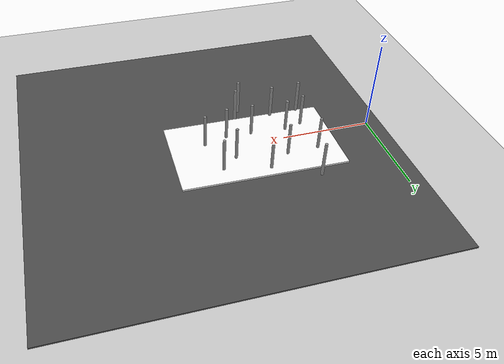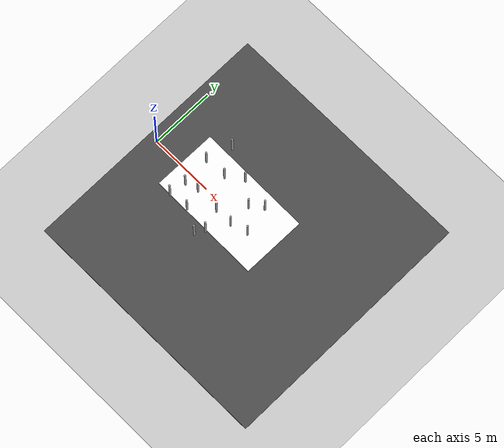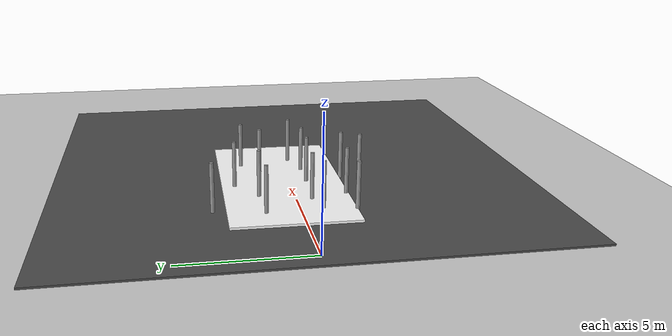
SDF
<sdf version="1.6">
 <world name="default">
  <model name="ground_plane">
   <static>1</static>
   <link name="link">
    <collision name="collision">
     <geometry><plane><normal>0 0 1</normal><size>100 100</size></plane></geometry>
     <surface><friction><ode><mu>100</mu><mu2>50</mu2></ode></friction></surface>
    </collision>
    <visual name="visual">
     <cast_shadows>0</cast_shadows>
     <geometry><plane><normal>0 0 1</normal><size>100 100</size></plane></geometry>
     <material>
      <script><uri>file://media/materials/scripts/gazebo.material</uri><name>Gazebo/Grey</name></script>
     </material>
    </visual>
   </link>
  </model>
  <model name="poste_16x200_clone_6_clone_9">
   <link name="link_1">
    <inertial>
     <mass>1</mass>
     <inertia><ixx>0.145833</ixx><ixy>0</ixy><ixz>0</ixz><iyy>0.145833</iyy><iyz>0</iyz><izz>0.125</izz></inertia>
    </inertial>
    <pose>5e-06 3e-06 0 0 -0 0</pose>
    <visual name="visual">
     <geometry><cylinder><radius>0.08</radius><length>2</length></cylinder></geometry>
     <material>
      <lighting>1</lighting>
      <script><uri>file://media/materials/scripts/gazebo.material</uri><name>Gazebo/Grey</name></script>
      <shader type="vertex"><normal_map>__default__</normal_map></shader>
      <ambient>0.3 0.3 0.3 1</ambient>
      <diffuse>0.7 0.7 0.7 1</diffuse>
      <specular>0.01 0.01 0.01 1</specular>
      <emissive>0 0 0 1</emissive>
     </material>
    </visual>
    <collision name="collision">
     <geometry><cylinder><radius>0.08</radius><length>2</length></cylinder></geometry>
     <surface>
      <friction>
       <ode><mu>1</mu><mu2>1</mu2><fdir1>0 0 0</fdir1><slip1>0</slip1><slip2>0</slip2></ode>
       <torsional>
        <coefficient>1</coefficient>
        <patch_radius>0</patch_radius>
        <surface_radius>0</surface_radius>
        <use_patch_radius>1</use_patch_radius>
        <ode><slip>0</slip></ode>
       </torsional>
      </friction>
      <bounce><restitution_coefficient>0</restitution_coefficient><threshold>1e+06</threshold></bounce>
      <contact>
       <collide_without_contact>0</collide_without_contact>
       <collide_without_contact_bitmask>1</collide_without_contact_bitmask>
       <collide_bitmask>1</collide_bitmask>
       <ode>
        <soft_cfm>0</soft_cfm>
        <soft_erp>0.2</soft_erp>
        <kp>1e+13</kp>
        <kd>1</kd>
        <max_vel>0.01</max_vel>
        <min_depth>0</min_depth>
       </ode>
       <bullet>
        <split_impulse>1</split_impulse>
        <split_impulse_penetration_threshold>-0.01</split_impulse_penetration_threshold>
        <soft_cfm>0</soft_cfm>
        <soft_erp>0.2</soft_erp>
        <kp>1e+13</kp>
        <kd>1</kd>
       </bullet>
      </contact>
     </surface>
    </collision>
   </link>
   <static>0</static>
   <pose>6.79569 -2.95608 1.05 -7e-05 3e-05 -0.033717</pose>
  </model>
  <model name="poste_16x200_clone_6_clone_14">
   <link name="link_1">
    <inertial>
     <mass>1</mass>
     <inertia><ixx>0.145833</ixx><ixy>0</ixy><ixz>0</ixz><iyy>0.145833</iyy><iyz>0</iyz><izz>0.125</izz></inertia>
    </inertial>
    <pose>5e-06 3e-06 0 0 -0 0</pose>
    <visual name="visual">
     <geometry><cylinder><radius>0.08</radius><length>2</length></cylinder></geometry>
     <material>
      <lighting>1</lighting>
      <script><uri>file://media/materials/scripts/gazebo.material</uri><name>Gazebo/Grey</name></script>
      <shader type="vertex"><normal_map>__default__</normal_map></shader>
      <ambient>0.3 0.3 0.3 1</ambient>
      <diffuse>0.7 0.7 0.7 1</diffuse>
      <specular>0.01 0.01 0.01 1</specular>
      <emissive>0 0 0 1</emissive>
     </material>
    </visual>
    <collision name="collision">
     <geometry><cylinder><radius>0.08</radius><length>2</length></cylinder></geometry>
     <surface>
      <friction>
       <ode><mu>1</mu><mu2>1</mu2><fdir1>0 0 0</fdir1><slip1>0</slip1><slip2>0</slip2></ode>
       <torsional>
        <coefficient>1</coefficient>
        <patch_radius>0</patch_radius>
        <surface_radius>0</surface_radius>
        <use_patch_radius>1</use_patch_radius>
        <ode><slip>0</slip></ode>
       </torsional>
      </friction>
      <bounce><restitution_coefficient>0</restitution_coefficient><threshold>1e+06</threshold></bounce>
      <contact>
       <collide_without_contact>0</collide_without_contact>
       <collide_without_contact_bitmask>1</collide_without_contact_bitmask>
       <collide_bitmask>1</collide_bitmask>
       <ode>
        <soft_cfm>0</soft_cfm>
        <soft_erp>0.2</soft_erp>
        <kp>1e+13</kp>
        <kd>1</kd>
        <max_vel>0.01</max_vel>
        <min_depth>0</min_depth>
       </ode>
       <bullet>
        <split_impulse>1</split_impulse>
        <split_impulse_penetration_threshold>-0.01</split_impulse_penetration_threshold>
        <soft_cfm>0</soft_cfm>
        <soft_erp>0.2</soft_erp>
        <kp>1e+13</kp>
        <kd>1</kd>
       </bullet>
      </contact>
     </surface>
    </collision>
   </link>
   <static>0</static>
   <pose>4.1574 3.37992 1.05001 -7.1e-05 3.2e-05 -0.012588</pose>
  </model>
  <model name="asphalt_plane">
   <static>1</static>
   <link name="link">
    <collision name="collision"><geometry><box><size>20 20 0.1</size></box></geometry></collision>
    <visual name="visual">
     <cast_shadows>0</cast_shadows>
     <geometry><box><size>20 20 0.1</size></box></geometry>
     <material>
      <script>
       <uri>model://asphalt_plane/materials/scripts</uri>
       <uri>model://asphalt_plane/materials/textures</uri>
       <name>vrc/asphalt</name>
      </script>
     </material>
    </visual>
   </link>
   <pose>9.20899 -0.21691 0 0 -0 0</pose>
  </model>
  <model name="poste_16x200_clone_6_clone_9_clone">
   <link name="link_1">
    <inertial>
     <mass>1</mass>
     <inertia><ixx>0.145833</ixx><ixy>0</ixy><ixz>0</ixz><iyy>0.145833</iyy><iyz>0</iyz><izz>0.125</izz></inertia>
    </inertial>
    <pose>5e-06 3e-06 0 0 -0 0</pose>
    <visual name="visual">
     <geometry><cylinder><radius>0.08</radius><length>2</length></cylinder></geometry>
     <material>
      <lighting>1</lighting>
      <script><uri>file://media/materials/scripts/gazebo.material</uri><name>Gazebo/Grey</name></script>
      <shader type="vertex"><normal_map>__default__</normal_map></shader>
      <ambient>0.3 0.3 0.3 1</ambient>
      <diffuse>0.7 0.7 0.7 1</diffuse>
      <specular>0.01 0.01 0.01 1</specular>
      <emissive>0 0 0 1</emissive>
     </material>
    </visual>
    <collision name="collision">
     <geometry><cylinder><radius>0.08</radius><length>2</length></cylinder></geometry>
     <surface>
      <friction>
       <ode><mu>1</mu><mu2>1</mu2><fdir1>0 0 0</fdir1><slip1>0</slip1><slip2>0</slip2></ode>
       <torsional>
        <coefficient>1</coefficient>
        <patch_radius>0</patch_radius>
        <surface_radius>0</surface_radius>
        <use_patch_radius>1</use_patch_radius>
        <ode><slip>0</slip></ode>
       </torsional>
      </friction>
      <bounce><restitution_coefficient>0</restitution_coefficient><threshold>1e+06</threshold></bounce>
      <contact>
       <collide_without_contact>0</collide_without_contact>
       <collide_without_contact_bitmask>1</collide_without_contact_bitmask>
       <collide_bitmask>1</collide_bitmask>
       <ode>
        <soft_cfm>0</soft_cfm>
        <soft_erp>0.2</soft_erp>
        <kp>1e+13</kp>
        <kd>1</kd>
        <max_vel>0.01</max_vel>
        <min_depth>0</min_depth>
       </ode>
       <bullet>
        <split_impulse>1</split_impulse>
        <split_impulse_penetration_threshold>-0.01</split_impulse_penetration_threshold>
        <soft_cfm>0</soft_cfm>
        <soft_erp>0.2</soft_erp>
        <kp>1e+13</kp>
        <kd>1</kd>
       </bullet>
      </contact>
     </surface>
    </collision>
   </link>
   <static>0</static>
   <pose>5.3148 1.45939 1.05 -7.4e-05 3e-05 -0.073887</pose>
  </model>
  <model name="poste_16x200_clone_6_clone_9_clone_0">
   <link name="link_1">
    <inertial>
     <mass>1</mass>
     <inertia><ixx>0.145833</ixx><ixy>0</ixy><ixz>0</ixz><iyy>0.145833</iyy><iyz>0</iyz><izz>0.125</izz></inertia>
    </inertial>
    <pose>5e-06 3e-06 0 0 -0 0</pose>
    <visual name="visual">
     <geometry><cylinder><radius>0.08</radius><length>2</length></cylinder></geometry>
     <material>
      <lighting>1</lighting>
      <script><uri>file://media/materials/scripts/gazebo.material</uri><name>Gazebo/Grey</name></script>
      <shader type="vertex"><normal_map>__default__</normal_map></shader>
      <ambient>0.3 0.3 0.3 1</ambient>
      <diffuse>0.7 0.7 0.7 1</diffuse>
      <specular>0.01 0.01 0.01 1</specular>
      <emissive>0 0 0 1</emissive>
     </material>
    </visual>
    <collision name="collision">
     <geometry><cylinder><radius>0.08</radius><length>2</length></cylinder></geometry>
     <surface>
      <friction>
       <ode><mu>1</mu><mu2>1</mu2><fdir1>0 0 0</fdir1><slip1>0</slip1><slip2>0</slip2></ode>
       <torsional>
        <coefficient>1</coefficient>
        <patch_radius>0</patch_radius>
        <surface_radius>0</surface_radius>
        <use_patch_radius>1</use_patch_radius>
        <ode><slip>0</slip></ode>
       </torsional>
      </friction>
      <bounce><restitution_coefficient>0</restitution_coefficient><threshold>1e+06</threshold></bounce>
      <contact>
       <collide_without_contact>0</collide_without_contact>
       <collide_without_contact_bitmask>1</collide_without_contact_bitmask>
       <collide_bitmask>1</collide_bitmask>
       <ode>
        <soft_cfm>0</soft_cfm>
        <soft_erp>0.2</soft_erp>
        <kp>1e+13</kp>
        <kd>1</kd>
        <max_vel>0.01</max_vel>
        <min_depth>0</min_depth>
       </ode>
       <bullet>
        <split_impulse>1</split_impulse>
        <split_impulse_penetration_threshold>-0.01</split_impulse_penetration_threshold>
        <soft_cfm>0</soft_cfm>
        <soft_erp>0.2</soft_erp>
        <kp>1e+13</kp>
        <kd>1</kd>
       </bullet>
      </contact>
     </surface>
    </collision>
   </link>
   <static>0</static>
   <pose>8.08824 1.09921 1.05001 -7.2e-05 3.2e-05 -0.055579</pose>
  </model>
  <model name="poste_16x200_clone_6_clone_9_clone_1">
   <link name="link_1">
    <inertial>
     <mass>1</mass>
     <inertia><ixx>0.145833</ixx><ixy>0</ixy><ixz>0</ixz><iyy>0.145833</iyy><iyz>0</iyz><izz>0.125</izz></inertia>
    </inertial>
    <pose>5e-06 3e-06 0 0 -0 0</pose>
    <visual name="visual">
     <geometry><cylinder><radius>0.08</radius><length>2</length></cylinder></geometry>
     <material>
      <lighting>1</lighting>
      <script><uri>file://media/materials/scripts/gazebo.material</uri><name>Gazebo/Grey</name></script>
      <shader type="vertex"><normal_map>__default__</normal_map></shader>
      <ambient>0.3 0.3 0.3 1</ambient>
      <diffuse>0.7 0.7 0.7 1</diffuse>
      <specular>0.01 0.01 0.01 1</specular>
      <emissive>0 0 0 1</emissive>
     </material>
    </visual>
    <collision name="collision">
     <geometry><cylinder><radius>0.08</radius><length>2</length></cylinder></geometry>
     <surface>
      <friction>
       <ode><mu>1</mu><mu2>1</mu2><fdir1>0 0 0</fdir1><slip1>0</slip1><slip2>0</slip2></ode>
       <torsional>
        <coefficient>1</coefficient>
        <patch_radius>0</patch_radius>
        <surface_radius>0</surface_radius>
        <use_patch_radius>1</use_patch_radius>
        <ode><slip>0</slip></ode>
       </torsional>
      </friction>
      <bounce><restitution_coefficient>0</restitution_coefficient><threshold>1e+06</threshold></bounce>
      <contact>
       <collide_without_contact>0</collide_without_contact>
       <collide_without_contact_bitmask>1</collide_without_contact_bitmask>
       <collide_bitmask>1</collide_bitmask>
       <ode>
        <soft_cfm>0</soft_cfm>
        <soft_erp>0.2</soft_erp>
        <kp>1e+13</kp>
        <kd>1</kd>
        <max_vel>0.01</max_vel>
        <min_depth>0</min_depth>
       </ode>
       <bullet>
        <split_impulse>1</split_impulse>
        <split_impulse_penetration_threshold>-0.01</split_impulse_penetration_threshold>
        <soft_cfm>0</soft_cfm>
        <soft_erp>0.2</soft_erp>
        <kp>1e+13</kp>
        <kd>1</kd>
       </bullet>
      </contact>
     </surface>
    </collision>
   </link>
   <static>0</static>
   <pose>3.50936 -2.11112 1.05 -7.7e-05 -4.6e-05 0.012023</pose>
  </model>
  <model name="poste_16x200_clone_6_clone_9_clone_3">
   <link name="link_1">
    <inertial>
     <mass>1</mass>
     <inertia><ixx>0.145833</ixx><ixy>0</ixy><ixz>0</ixz><iyy>0.145833</iyy><iyz>0</iyz><izz>0.125</izz></inertia>
    </inertial>
    <pose>5e-06 3e-06 0 0 -0 0</pose>
    <visual name="visual">
     <geometry><cylinder><radius>0.08</radius><length>2</length></cylinder></geometry>
     <material>
      <lighting>1</lighting>
      <script><uri>file://media/materials/scripts/gazebo.material</uri><name>Gazebo/Grey</name></script>
      <shader type="vertex"><normal_map>__default__</normal_map></shader>
      <ambient>0.3 0.3 0.3 1</ambient>
      <diffuse>0.7 0.7 0.7 1</diffuse>
      <specular>0.01 0.01 0.01 1</specular>
      <emissive>0 0 0 1</emissive>
     </material>
    </visual>
    <collision name="collision">
     <geometry><cylinder><radius>0.08</radius><length>2</length></cylinder></geometry>
     <surface>
      <friction>
       <ode><mu>1</mu><mu2>1</mu2><fdir1>0 0 0</fdir1><slip1>0</slip1><slip2>0</slip2></ode>
       <torsional>
        <coefficient>1</coefficient>
        <patch_radius>0</patch_radius>
        <surface_radius>0</surface_radius>
        <use_patch_radius>1</use_patch_radius>
        <ode><slip>0</slip></ode>
       </torsional>
      </friction>
      <bounce><restitution_coefficient>0</restitution_coefficient><threshold>1e+06</threshold></bounce>
      <contact>
       <collide_without_contact>0</collide_without_contact>
       <collide_without_contact_bitmask>1</collide_without_contact_bitmask>
       <collide_bitmask>1</collide_bitmask>
       <ode>
        <soft_cfm>0</soft_cfm>
        <soft_erp>0.2</soft_erp>
        <kp>1e+13</kp>
        <kd>1</kd>
        <max_vel>0.01</max_vel>
        <min_depth>0</min_depth>
       </ode>
       <bullet>
        <split_impulse>1</split_impulse>
        <split_impulse_penetration_threshold>-0.01</split_impulse_penetration_threshold>
        <soft_cfm>0</soft_cfm>
        <soft_erp>0.2</soft_erp>
        <kp>1e+13</kp>
        <kd>1</kd>
       </bullet>
      </contact>
     </surface>
    </collision>
   </link>
   <static>0</static>
   <pose>8.12307 -0.705064 1.05 -6e-05 2.9e-05 -0.057602</pose>
  </model>
  <model name="poste_16x200_clone_6_clone_9_clone_4">
   <link name="link_1">
    <inertial>
     <mass>1</mass>
     <inertia><ixx>0.145833</ixx><ixy>0</ixy><ixz>0</ixz><iyy>0.145833</iyy><iyz>0</iyz><izz>0.125</izz></inertia>
    </inertial>
    <pose>5e-06 3e-06 0 0 -0 0</pose>
    <visual name="visual">
     <geometry><cylinder><radius>0.08</radius><length>2</length></cylinder></geometry>
     <material>
      <lighting>1</lighting>
      <script><uri>file://media/materials/scripts/gazebo.material</uri><name>Gazebo/Grey</name></script>
      <shader type="vertex"><normal_map>__default__</normal_map></shader>
      <ambient>0.3 0.3 0.3 1</ambient>
      <diffuse>0.7 0.7 0.7 1</diffuse>
      <specular>0.01 0.01 0.01 1</specular>
      <emissive>0 0 0 1</emissive>
     </material>
    </visual>
    <collision name="collision">
     <geometry><cylinder><radius>0.08</radius><length>2</length></cylinder></geometry>
     <surface>
      <friction>
       <ode><mu>1</mu><mu2>1</mu2><fdir1>0 0 0</fdir1><slip1>0</slip1><slip2>0</slip2></ode>
       <torsional>
        <coefficient>1</coefficient>
        <patch_radius>0</patch_radius>
        <surface_radius>0</surface_radius>
        <use_patch_radius>1</use_patch_radius>
        <ode><slip>0</slip></ode>
       </torsional>
      </friction>
      <bounce><restitution_coefficient>0</restitution_coefficient><threshold>1e+06</threshold></bounce>
      <contact>
       <collide_without_contact>0</collide_without_contact>
       <collide_without_contact_bitmask>1</collide_without_contact_bitmask>
       <collide_bitmask>1</collide_bitmask>
       <ode>
        <soft_cfm>0</soft_cfm>
        <soft_erp>0.2</soft_erp>
        <kp>1e+13</kp>
        <kd>1</kd>
        <max_vel>0.01</max_vel>
        <min_depth>0</min_depth>
       </ode>
       <bullet>
        <split_impulse>1</split_impulse>
        <split_impulse_penetration_threshold>-0.01</split_impulse_penetration_threshold>
        <soft_cfm>0</soft_cfm>
        <soft_erp>0.2</soft_erp>
        <kp>1e+13</kp>
        <kd>1</kd>
       </bullet>
      </contact>
     </surface>
    </collision>
   </link>
   <static>0</static>
   <pose>6.69988 -0.687682 1.05 -7.2e-05 3.2e-05 -0.046326</pose>
  </model>
  <model name="poste_16x200_clone_6_clone_9_clone_5">
   <link name="link_1">
    <inertial>
     <mass>1</mass>
     <inertia><ixx>0.145833</ixx><ixy>0</ixy><ixz>0</ixz><iyy>0.145833</iyy><iyz>0</iyz><izz>0.125</izz></inertia>
    </inertial>
    <pose>5e-06 3e-06 0 0 -0 0</pose>
    <visual name="visual">
     <geometry><cylinder><radius>0.08</radius><length>2</length></cylinder></geometry>
     <material>
      <lighting>1</lighting>
      <script><uri>file://media/materials/scripts/gazebo.material</uri><name>Gazebo/Grey</name></script>
      <shader type="vertex"><normal_map>__default__</normal_map></shader>
      <ambient>0.3 0.3 0.3 1</ambient>
      <diffuse>0.7 0.7 0.7 1</diffuse>
      <specular>0.01 0.01 0.01 1</specular>
      <emissive>0 0 0 1</emissive>
     </material>
    </visual>
    <collision name="collision">
     <geometry><cylinder><radius>0.08</radius><length>2</length></cylinder></geometry>
     <surface>
      <friction>
       <ode><mu>1</mu><mu2>1</mu2><fdir1>0 0 0</fdir1><slip1>0</slip1><slip2>0</slip2></ode>
       <torsional>
        <coefficient>1</coefficient>
        <patch_radius>0</patch_radius>
        <surface_radius>0</surface_radius>
        <use_patch_radius>1</use_patch_radius>
        <ode><slip>0</slip></ode>
       </torsional>
      </friction>
      <bounce><restitution_coefficient>0</restitution_coefficient><threshold>1e+06</threshold></bounce>
      <contact>
       <collide_without_contact>0</collide_without_contact>
       <collide_without_contact_bitmask>1</collide_without_contact_bitmask>
       <collide_bitmask>1</collide_bitmask>
       <ode>
        <soft_cfm>0</soft_cfm>
        <soft_erp>0.2</soft_erp>
        <kp>1e+13</kp>
        <kd>1</kd>
        <max_vel>0.01</max_vel>
        <min_depth>0</min_depth>
       </ode>
       <bullet>
        <split_impulse>1</split_impulse>
        <split_impulse_penetration_threshold>-0.01</split_impulse_penetration_threshold>
        <soft_cfm>0</soft_cfm>
        <soft_erp>0.2</soft_erp>
        <kp>1e+13</kp>
        <kd>1</kd>
       </bullet>
      </contact>
     </surface>
    </collision>
   </link>
   <static>0</static>
   <pose>4.73402 -0.570236 1.05001 -7.3e-05 3.3e-05 -0.020185</pose>
  </model>
  <model name="poste_16x200_clone_6_clone_9_clone_6">
   <link name="link_1">
    <inertial>
     <mass>1</mass>
     <inertia><ixx>0.145833</ixx><ixy>0</ixy><ixz>0</ixz><iyy>0.145833</iyy><iyz>0</iyz><izz>0.125</izz></inertia>
    </inertial>
    <pose>5e-06 3e-06 0 0 -0 0</pose>
    <visual name="visual">
     <geometry><cylinder><radius>0.08</radius><length>2</length></cylinder></geometry>
     <material>
      <lighting>1</lighting>
      <script><uri>file://media/materials/scripts/gazebo.material</uri><name>Gazebo/Grey</name></script>
      <shader type="vertex"><normal_map>__default__</normal_map></shader>
      <ambient>0.3 0.3 0.3 1</ambient>
      <diffuse>0.7 0.7 0.7 1</diffuse>
      <specular>0.01 0.01 0.01 1</specular>
      <emissive>0 0 0 1</emissive>
     </material>
    </visual>
    <collision name="collision">
     <geometry><cylinder><radius>0.08</radius><length>2</length></cylinder></geometry>
     <surface>
      <friction>
       <ode><mu>1</mu><mu2>1</mu2><fdir1>0 0 0</fdir1><slip1>0</slip1><slip2>0</slip2></ode>
       <torsional>
        <coefficient>1</coefficient>
        <patch_radius>0</patch_radius>
        <surface_radius>0</surface_radius>
        <use_patch_radius>1</use_patch_radius>
        <ode><slip>0</slip></ode>
       </torsional>
      </friction>
      <bounce><restitution_coefficient>0</restitution_coefficient><threshold>1e+06</threshold></bounce>
      <contact>
       <collide_without_contact>0</collide_without_contact>
       <collide_without_contact_bitmask>1</collide_without_contact_bitmask>
       <collide_bitmask>1</collide_bitmask>
       <ode>
        <soft_cfm>0</soft_cfm>
        <soft_erp>0.2</soft_erp>
        <kp>1e+13</kp>
        <kd>1</kd>
        <max_vel>0.01</max_vel>
        <min_depth>0</min_depth>
       </ode>
       <bullet>
        <split_impulse>1</split_impulse>
        <split_impulse_penetration_threshold>-0.01</split_impulse_penetration_threshold>
        <soft_cfm>0</soft_cfm>
        <soft_erp>0.2</soft_erp>
        <kp>1e+13</kp>
        <kd>1</kd>
       </bullet>
      </contact>
     </surface>
    </collision>
   </link>
   <static>0</static>
   <pose>9.42211 -0.337371 1.05001 -7.7e-05 3.2e-05 -0.048237</pose>
  </model>
  <model name="poste_16x200_clone_6_clone_9_clone_8">
   <link name="link_1">
    <inertial>
     <mass>1</mass>
     <inertia><ixx>0.145833</ixx><ixy>0</ixy><ixz>0</ixz><iyy>0.145833</iyy><iyz>0</iyz><izz>0.125</izz></inertia>
    </inertial>
    <pose>5e-06 3e-06 0 0 -0 0</pose>
    <visual name="visual">
     <geometry><cylinder><radius>0.08</radius><length>2</length></cylinder></geometry>
     <material>
      <lighting>1</lighting>
      <script><uri>file://media/materials/scripts/gazebo.material</uri><name>Gazebo/Grey</name></script>
      <shader type="vertex"><normal_map>__default__</normal_map></shader>
      <ambient>0.3 0.3 0.3 1</ambient>
      <diffuse>0.7 0.7 0.7 1</diffuse>
      <specular>0.01 0.01 0.01 1</specular>
      <emissive>0 0 0 1</emissive>
     </material>
    </visual>
    <collision name="collision">
     <geometry><cylinder><radius>0.08</radius><length>2</length></cylinder></geometry>
     <surface>
      <friction>
       <ode><mu>1</mu><mu2>1</mu2><fdir1>0 0 0</fdir1><slip1>0</slip1><slip2>0</slip2></ode>
       <torsional>
        <coefficient>1</coefficient>
        <patch_radius>0</patch_radius>
        <surface_radius>0</surface_radius>
        <use_patch_radius>1</use_patch_radius>
        <ode><slip>0</slip></ode>
       </torsional>
      </friction>
      <bounce><restitution_coefficient>0</restitution_coefficient><threshold>1e+06</threshold></bounce>
      <contact>
       <collide_without_contact>0</collide_without_contact>
       <collide_without_contact_bitmask>1</collide_without_contact_bitmask>
       <collide_bitmask>1</collide_bitmask>
       <ode>
        <soft_cfm>0</soft_cfm>
        <soft_erp>0.2</soft_erp>
        <kp>1e+13</kp>
        <kd>1</kd>
        <max_vel>0.01</max_vel>
        <min_depth>0</min_depth>
       </ode>
       <bullet>
        <split_impulse>1</split_impulse>
        <split_impulse_penetration_threshold>-0.01</split_impulse_penetration_threshold>
        <soft_cfm>0</soft_cfm>
        <soft_erp>0.2</soft_erp>
        <kp>1e+13</kp>
        <kd>1</kd>
       </bullet>
      </contact>
     </surface>
    </collision>
   </link>
   <static>0</static>
   <pose>3.57675 1.39415 1.05001 -5.8e-05 2.8e-05 -0.052523</pose>
  </model>
  <model name="poste_16x200_clone_6_clone_9_clone_9">
   <link name="link_1">
    <inertial>
     <mass>1</mass>
     <inertia><ixx>0.145833</ixx><ixy>0</ixy><ixz>0</ixz><iyy>0.145833</iyy><iyz>0</iyz><izz>0.125</izz></inertia>
    </inertial>
    <pose>5e-06 3e-06 0 0 -0 0</pose>
    <visual name="visual">
     <geometry><cylinder><radius>0.08</radius><length>2</length></cylinder></geometry>
     <material>
      <lighting>1</lighting>
      <script><uri>file://media/materials/scripts/gazebo.material</uri><name>Gazebo/Grey</name></script>
      <shader type="vertex"><normal_map>__default__</normal_map></shader>
      <ambient>0.3 0.3 0.3 1</ambient>
      <diffuse>0.7 0.7 0.7 1</diffuse>
      <specular>0.01 0.01 0.01 1</specular>
      <emissive>0 0 0 1</emissive>
     </material>
    </visual>
    <collision name="collision">
     <geometry><cylinder><radius>0.08</radius><length>2</length></cylinder></geometry>
     <surface>
      <friction>
       <ode><mu>1</mu><mu2>1</mu2><fdir1>0 0 0</fdir1><slip1>0</slip1><slip2>0</slip2></ode>
       <torsional>
        <coefficient>1</coefficient>
        <patch_radius>0</patch_radius>
        <surface_radius>0</surface_radius>
        <use_patch_radius>1</use_patch_radius>
        <ode><slip>0</slip></ode>
       </torsional>
      </friction>
      <bounce><restitution_coefficient>0</restitution_coefficient><threshold>1e+06</threshold></bounce>
      <contact>
       <collide_without_contact>0</collide_without_contact>
       <collide_without_contact_bitmask>1</collide_without_contact_bitmask>
       <collide_bitmask>1</collide_bitmask>
       <ode>
        <soft_cfm>0</soft_cfm>
        <soft_erp>0.2</soft_erp>
        <kp>1e+13</kp>
        <kd>1</kd>
        <max_vel>0.01</max_vel>
        <min_depth>0</min_depth>
       </ode>
       <bullet>
        <split_impulse>1</split_impulse>
        <split_impulse_penetration_threshold>-0.01</split_impulse_penetration_threshold>
        <soft_cfm>0</soft_cfm>
        <soft_erp>0.2</soft_erp>
        <kp>1e+13</kp>
        <kd>1</kd>
       </bullet>
      </contact>
     </surface>
    </collision>
   </link>
   <static>0</static>
   <pose>5.1262 -2.02926 1.05 -6.6e-05 3.1e-05 -0.029308</pose>
  </model>
  <model name="poste_16x200_clone_6_clone_9_clone_10">
   <link name="link_1">
    <inertial>
     <mass>1</mass>
     <inertia><ixx>0.145833</ixx><ixy>0</ixy><ixz>0</ixz><iyy>0.145833</iyy><iyz>0</iyz><izz>0.125</izz></inertia>
    </inertial>
    <pose>5e-06 3e-06 0 0 -0 0</pose>
    <visual name="visual">
     <geometry><cylinder><radius>0.08</radius><length>2</length></cylinder></geometry>
     <material>
      <lighting>1</lighting>
      <script><uri>file://media/materials/scripts/gazebo.material</uri><name>Gazebo/Grey</name></script>
      <shader type="vertex"><normal_map>__default__</normal_map></shader>
      <ambient>0.3 0.3 0.3 1</ambient>
      <diffuse>0.7 0.7 0.7 1</diffuse>
      <specular>0.01 0.01 0.01 1</specular>
      <emissive>0 0 0 1</emissive>
     </material>
    </visual>
    <collision name="collision">
     <geometry><cylinder><radius>0.08</radius><length>2</length></cylinder></geometry>
     <surface>
      <friction>
       <ode><mu>1</mu><mu2>1</mu2><fdir1>0 0 0</fdir1><slip1>0</slip1><slip2>0</slip2></ode>
       <torsional>
        <coefficient>1</coefficient>
        <patch_radius>0</patch_radius>
        <surface_radius>0</surface_radius>
        <use_patch_radius>1</use_patch_radius>
        <ode><slip>0</slip></ode>
       </torsional>
      </friction>
      <bounce><restitution_coefficient>0</restitution_coefficient><threshold>1e+06</threshold></bounce>
      <contact>
       <collide_without_contact>0</collide_without_contact>
       <collide_without_contact_bitmask>1</collide_without_contact_bitmask>
       <collide_bitmask>1</collide_bitmask>
       <ode>
        <soft_cfm>0</soft_cfm>
        <soft_erp>0.2</soft_erp>
        <kp>1e+13</kp>
        <kd>1</kd>
        <max_vel>0.01</max_vel>
        <min_depth>0</min_depth>
       </ode>
       <bullet>
        <split_impulse>1</split_impulse>
        <split_impulse_penetration_threshold>-0.01</split_impulse_penetration_threshold>
        <soft_cfm>0</soft_cfm>
        <soft_erp>0.2</soft_erp>
        <kp>1e+13</kp>
        <kd>1</kd>
       </bullet>
      </contact>
     </surface>
    </collision>
   </link>
   <static>0</static>
   <pose>7.18108 -2.24152 1.05001 -7.6e-05 3.2e-05 -0.041374</pose>
  </model>
  <model name="poste_16x200_clone_6_clone_9_clone_15">
   <link name="link_1">
    <inertial>
     <mass>1</mass>
     <inertia><ixx>0.145833</ixx><ixy>0</ixy><ixz>0</ixz><iyy>0.145833</iyy><iyz>0</iyz><izz>0.125</izz></inertia>
    </inertial>
    <pose>5e-06 3e-06 0 0 -0 0</pose>
    <visual name="visual">
     <geometry><cylinder><radius>0.08</radius><length>2</length></cylinder></geometry>
     <material>
      <lighting>1</lighting>
      <script><uri>file://media/materials/scripts/gazebo.material</uri><name>Gazebo/Grey</name></script>
      <shader type="vertex"><normal_map>__default__</normal_map></shader>
      <ambient>0.3 0.3 0.3 1</ambient>
      <diffuse>0.7 0.7 0.7 1</diffuse>
      <specular>0.01 0.01 0.01 1</specular>
      <emissive>0 0 0 1</emissive>
     </material>
    </visual>
    <collision name="collision">
     <geometry><cylinder><radius>0.08</radius><length>2</length></cylinder></geometry>
     <surface>
      <friction>
       <ode><mu>1</mu><mu2>1</mu2><fdir1>0 0 0</fdir1><slip1>0</slip1><slip2>0</slip2></ode>
       <torsional>
        <coefficient>1</coefficient>
        <patch_radius>0</patch_radius>
        <surface_radius>0</surface_radius>
        <use_patch_radius>1</use_patch_radius>
        <ode><slip>0</slip></ode>
       </torsional>
      </friction>
      <bounce><restitution_coefficient>0</restitution_coefficient><threshold>1e+06</threshold></bounce>
      <contact>
       <collide_without_contact>0</collide_without_contact>
       <collide_without_contact_bitmask>1</collide_without_contact_bitmask>
       <collide_bitmask>1</collide_bitmask>
       <ode>
        <soft_cfm>0</soft_cfm>
        <soft_erp>0.2</soft_erp>
        <kp>1e+13</kp>
        <kd>1</kd>
        <max_vel>0.01</max_vel>
        <min_depth>0</min_depth>
       </ode>
       <bullet>
        <split_impulse>1</split_impulse>
        <split_impulse_penetration_threshold>-0.01</split_impulse_penetration_threshold>
        <soft_cfm>0</soft_cfm>
        <soft_erp>0.2</soft_erp>
        <kp>1e+13</kp>
        <kd>1</kd>
       </bullet>
      </contact>
     </surface>
    </collision>
   </link>
   <static>0</static>
   <pose>8.97724 1.81828 1.05 -7.5e-05 3.3e-05 -0.035814</pose>
  </model>
  <model name="floor_image">
   <link name="box">
    <pose>-0 -1.5 -0 0 -0 0</pose>
    <inertial>
     <inertia><ixx>1</ixx><ixy>0</ixy><ixz>0</ixz><iyy>1</iyy><iyz>0</iyz><izz>1</izz></inertia>
     <mass>100</mass>
    </inertial>
    <gravity>0</gravity>
    <visual name="visual">
     <geometry><box><size>5 9 0.1</size></box></geometry>
     <material>
      <script>
       <uri>model://floor/materials/scripts</uri>
       <uri>model://floor/materials/textures</uri>
       <name>TexturedFloor/Image</name>
      </script>
      <shader type="pixel"><normal_map>__default__</normal_map></shader>
      <ambient>1 1 1 1</ambient>
      <diffuse>1 1 1 1</diffuse>
      <specular>0 0 0 1</specular>
      <emissive>0 0 0 1</emissive>
     </material>
    </visual>
   </link>
   <static>0</static>
   <pose>5.38152 0.366697 0.099958 2.3e-05 6e-06 1.56043</pose>
  </model>
  <model name="poste_16x200_clone_6_clone_14_clone">
   <link name="link_1">
    <inertial>
     <mass>1</mass>
     <inertia><ixx>0.145833</ixx><ixy>0</ixy><ixz>0</ixz><iyy>0.145833</iyy><iyz>0</iyz><izz>0.125</izz></inertia>
    </inertial>
    <pose>5e-06 3e-06 0 0 -0 0</pose>
    <visual name="visual">
     <geometry><cylinder><radius>0.08</radius><length>2</length></cylinder></geometry>
     <material>
      <lighting>1</lighting>
      <script><uri>file://media/materials/scripts/gazebo.material</uri><name>Gazebo/Grey</name></script>
      <shader type="vertex"><normal_map>__default__</normal_map></shader>
      <ambient>0.3 0.3 0.3 1</ambient>
      <diffuse>0.7 0.7 0.7 1</diffuse>
      <specular>0.01 0.01 0.01 1</specular>
      <emissive>0 0 0 1</emissive>
     </material>
    </visual>
    <collision name="collision">
     <geometry><cylinder><radius>0.08</radius><length>2</length></cylinder></geometry>
     <surface>
      <friction>
       <ode><mu>1</mu><mu2>1</mu2><fdir1>0 0 0</fdir1><slip1>0</slip1><slip2>0</slip2></ode>
       <torsional>
        <coefficient>1</coefficient>
        <patch_radius>0</patch_radius>
        <surface_radius>0</surface_radius>
        <use_patch_radius>1</use_patch_radius>
        <ode><slip>0</slip></ode>
       </torsional>
      </friction>
      <bounce><restitution_coefficient>0</restitution_coefficient><threshold>1e+06</threshold></bounce>
      <contact>
       <collide_without_contact>0</collide_without_contact>
       <collide_without_contact_bitmask>1</collide_without_contact_bitmask>
       <collide_bitmask>1</collide_bitmask>
       <ode>
        <soft_cfm>0</soft_cfm>
        <soft_erp>0.2</soft_erp>
        <kp>1e+13</kp>
        <kd>1</kd>
        <max_vel>0.01</max_vel>
        <min_depth>0</min_depth>
       </ode>
       <bullet>
        <split_impulse>1</split_impulse>
        <split_impulse_penetration_threshold>-0.01</split_impulse_penetration_threshold>
        <soft_cfm>0</soft_cfm>
        <soft_erp>0.2</soft_erp>
        <kp>1e+13</kp>
        <kd>1</kd>
       </bullet>
      </contact>
     </surface>
    </collision>
   </link>
   <static>0</static>
   <pose>6.5367 2.31764 1.05 -7.1e-05 2.9e-05 -0.012598</pose>
  </model>
  <model name="poste_16x200_clone_6_clone_14_clone_2">
   <link name="link_1">
    <inertial>
     <mass>1</mass>
     <inertia><ixx>0.145833</ixx><ixy>0</ixy><ixz>0</ixz><iyy>0.145833</iyy><iyz>0</iyz><izz>0.125</izz></inertia>
    </inertial>
    <pose>5e-06 3e-06 0 0 -0 0</pose>
    <visual name="visual">
     <geometry><cylinder><radius>0.08</radius><length>2</length></cylinder></geometry>
     <material>
      <lighting>1</lighting>
      <script><uri>file://media/materials/scripts/gazebo.material</uri><name>Gazebo/Grey</name></script>
      <shader type="vertex"><normal_map>__default__</normal_map></shader>
      <ambient>0.3 0.3 0.3 1</ambient>
      <diffuse>0.7 0.7 0.7 1</diffuse>
      <specular>0.01 0.01 0.01 1</specular>
      <emissive>0 0 0 1</emissive>
     </material>
    </visual>
    <collision name="collision">
     <geometry><cylinder><radius>0.08</radius><length>2</length></cylinder></geometry>
     <surface>
      <friction>
       <ode><mu>1</mu><mu2>1</mu2><fdir1>0 0 0</fdir1><slip1>0</slip1><slip2>0</slip2></ode>
       <torsional>
        <coefficient>1</coefficient>
        <patch_radius>0</patch_radius>
        <surface_radius>0</surface_radius>
        <use_patch_radius>1</use_patch_radius>
        <ode><slip>0</slip></ode>
       </torsional>
      </friction>
      <bounce><restitution_coefficient>0</restitution_coefficient><threshold>1e+06</threshold></bounce>
      <contact>
       <collide_without_contact>0</collide_without_contact>
       <collide_without_contact_bitmask>1</collide_without_contact_bitmask>
       <collide_bitmask>1</collide_bitmask>
       <ode>
        <soft_cfm>0</soft_cfm>
        <soft_erp>0.2</soft_erp>
        <kp>1e+13</kp>
        <kd>1</kd>
        <max_vel>0.01</max_vel>
        <min_depth>0</min_depth>
       </ode>
       <bullet>
        <split_impulse>1</split_impulse>
        <split_impulse_penetration_threshold>-0.01</split_impulse_penetration_threshold>
        <soft_cfm>0</soft_cfm>
        <soft_erp>0.2</soft_erp>
        <kp>1e+13</kp>
        <kd>1</kd>
       </bullet>
      </contact>
     </surface>
    </collision>
   </link>
   <static>0</static>
   <pose>3.73778 -0.830472 1.05001 -7.6e-05 3.4e-05 -0.012612</pose>
  </model>
 </world>
</sdf>
